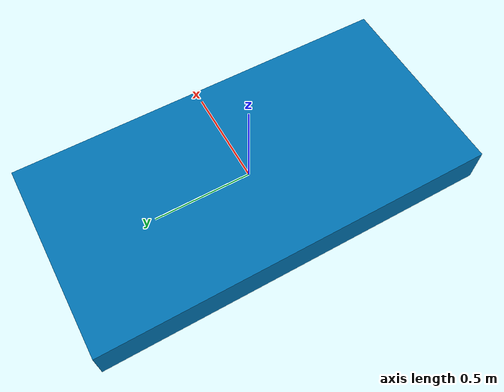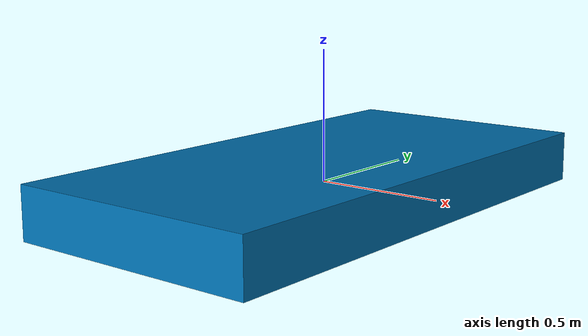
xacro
<?xml version="1.0"?>

<robot name="mobile_manipulator" xmlns:xacro="http://ros.org/wiki/xacro" xmlns:gz="http://gazebosim.org/schema">
  <xacro:arg name="prefix"             default="ghost/"/>
  <xacro:arg name="world_frame"        default="map"/>
  <xacro:arg name="create_world_frame" default="true"/>

  <xacro:if value="$(arg create_world_frame)">
    <link name="$(arg world_frame)"/>
  </xacro:if>

  <link name="$(arg prefix)ghost_linear_x"/>
  <link name="$(arg prefix)ghost_linear_y"/>
  <link name="$(arg prefix)ghost_linear_z"/>

  <link name="$(arg prefix)ghost_base">
    <visual>
      <geometry>
        <box size="1.0 2.0 0.2"/>
      </geometry>
    </visual>
    <collision>
      <geometry>
        <box size="1.0 2.0 0.2"/>
      </geometry>
    </collision>
  </link>
  <joint name="$(arg prefix)to_ghost_frame_x" type="prismatic">
    <parent link="$(arg world_frame)"/>
    <child  link="$(arg prefix)ghost_linear_x"/>
    <axis xyz="1 0 0"/>
    <limit lower="-1000000" upper="1000000" effort="1000000" velocity="1000000"/>
  </joint>

  <joint name="$(arg prefix)to_ghost_frame_y" type="prismatic">
    <parent link="$(arg prefix)ghost_linear_x"/>
    <child  link="$(arg prefix)ghost_linear_y"/>
    <axis xyz="0 1 0"/>
    <limit lower="-1000000" upper="1000000" effort="1000000" velocity="1000000"/>
  </joint>

  <joint name="$(arg prefix)to_ghost_frame_z" type="prismatic">
    <parent link="$(arg prefix)ghost_linear_y"/>
    <child  link="$(arg prefix)ghost_linear_z"/>
    <axis xyz="0 0 1"/>
    <limit lower="-1000000" upper="1000000" effort="1000000" velocity="1000000"/>
  </joint>

  <joint name="$(arg prefix)to_ghost_frame" type="fixed">
    <parent link="$(arg prefix)ghost_linear_z"/>
    <child  link="$(arg prefix)ghost_base"/>
  </joint>
</robot>
